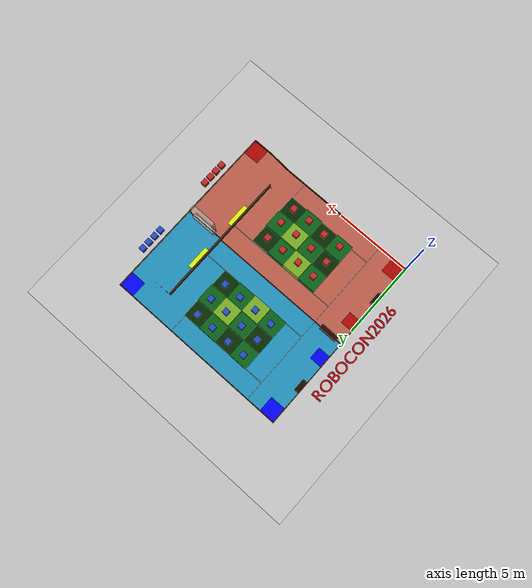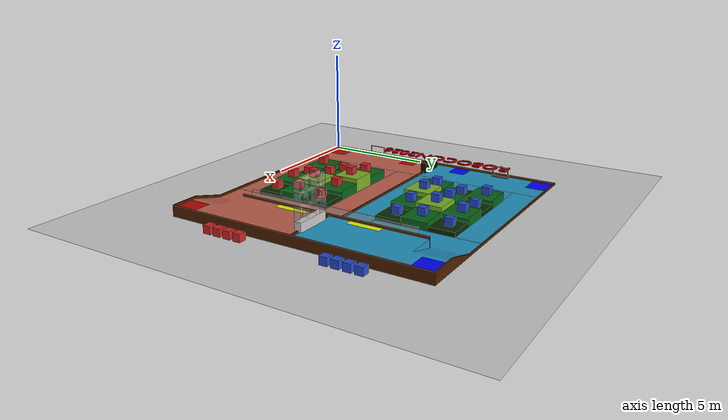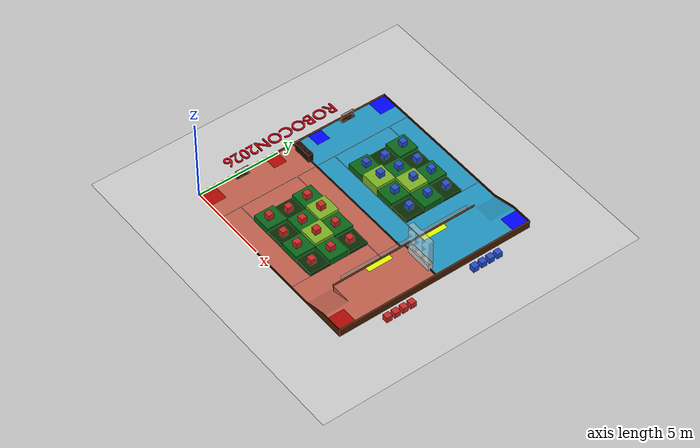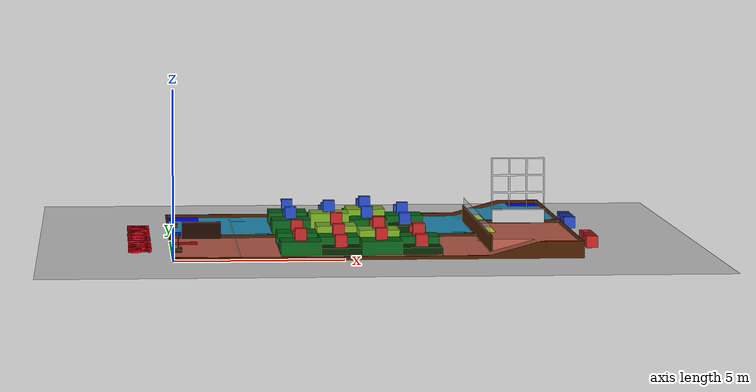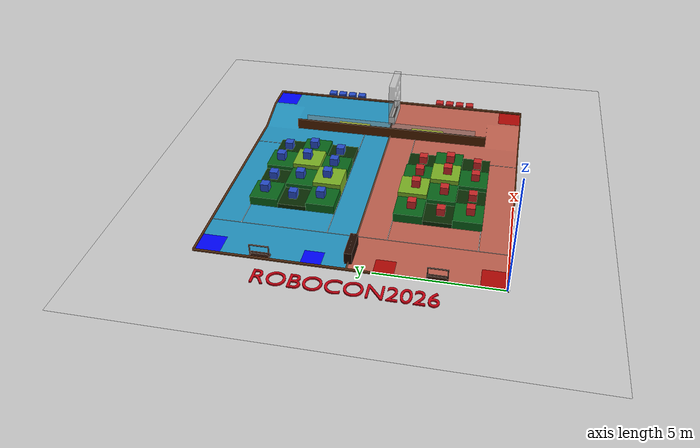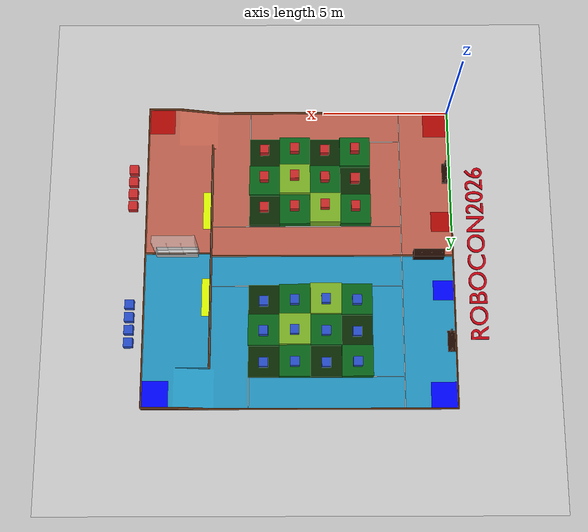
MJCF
<mujoco>
  <default>
    <default class="scene_attribute">
      <default class="scene_visual">
        <geom contype="0" conaffinity="0" group="2"/>
      </default>
      <default class="scene_collision">
        <geom group="3" priority="1" friction="0.6" condim="3" contype="1" conaffinity="0" type="mesh"/>
      </default>
    </default>
    <site size="0.001" group="3"/>
  </default>

  <visual>
    <headlight diffuse="0.6 0.6 0.6" ambient="0.3 0.3 0.3" specular="0 0 0"/>
    <global azimuth="120" elevation="-20"/>
  </visual>

  <worldbody>
    <light pos=" 6 0 10." dir="0 0 -1"/>
    <light pos="-6 0 10." dir="0 0 -1"/>
    <light pos="0  6 10." dir="0 0 -1"/>
    <light pos="0 -6 10." dir="0 0 -1"/>

    <camera name="family_photo" pos="-2.983 5.936 1.710" xyaxes="-0.010 -1.000 -0.000 0.544 -0.005 0.839" fovy="75"/>
    <camera name="top_view" pos="5.600 6.000 20" xyaxes="0 -1 0 1 0 0"/>

    <include file="../../../models/mjcf/kfs.xml"/>

    <body name="scene" childclass="scene_attribute" pos="6.000 6.000 0">
      <body name="scene_visual">
        <geom type="mesh" mesh="robocon2026_0" class="scene_visual" material="robocon2026_mtl_9gg"/>
        <geom type="mesh" mesh="robocon2026_2" class="scene_visual" material="robocon2026_green"/>
        <geom type="mesh" mesh="robocon2026_3" class="scene_visual" material="robocon2026_stair_green"/>
        <geom type="mesh" mesh="robocon2026_4" class="scene_visual" material="robocon2026_yellow"/>
        <geom type="mesh" mesh="robocon2026_8" class="scene_visual" material="robocon2026_mtl_toumingge"/>
        <geom type="mesh" mesh="robocon2026_9" class="scene_visual" material="robocon2026_start_red"/>
        <geom type="mesh" mesh="robocon2026_10" class="scene_visual" material="robocon2026_weapon_grey"/>
        <geom type="mesh" mesh="robocon2026_11" class="scene_visual" material="robocon2026_white_line"/>
        <geom type="mesh" mesh="robocon2026_12" class="scene_visual" material="robocon2026_blue_floor"/>
        <geom type="mesh" mesh="robocon2026_13" class="scene_visual" material="robocon2026_red_floor"/>
        <geom type="mesh" mesh="robocon2026_15" class="scene_visual" material="robocon2026_start_blue"/>
        <geom type="mesh" mesh="robocon2026_16" class="scene_visual" material="robocon2026_wood"/>
        <geom type="mesh" mesh="robocon2026_17" class="scene_visual" material="robocon2026_sidebar"/>
        <geom type="mesh" mesh="robocon2026_18" class="scene_visual" material="robocon2026_mtl_floor"/>
        <geom type="mesh" mesh="robocon2026_19" class="scene_visual" material="robocon2026_mtl_009"/>
      </body>

      <body name="scene_collision">
        <geom name="floor" type="plane" size="10 10 0.01" group="3"/>
        <geom mesh="scene_part_001" class="scene_collision"/>
        <geom mesh="part_002_part_0" class="scene_collision"/>
        <geom mesh="part_002_part_1" class="scene_collision"/>
        <geom mesh="part_002_part_2" class="scene_collision"/>
        <geom mesh="part_002_part_3" class="scene_collision"/>
        <geom mesh="part_002_part_4" class="scene_collision"/>
        <geom mesh="part_002_part_5" class="scene_collision"/>
        <geom mesh="part_002_part_6" class="scene_collision"/>
        <geom mesh="part_002_part_7" class="scene_collision"/>
        <geom mesh="part_002_part_0" class="scene_collision"/>
        <geom mesh="part_002_part_1" class="scene_collision"/>
        <geom mesh="part_002_part_2" class="scene_collision"/>
        <geom mesh="part_002_part_3" class="scene_collision"/>
        <geom mesh="part_002_part_4" class="scene_collision"/>
        <geom mesh="part_002_part_5" class="scene_collision"/>
        <geom mesh="part_002_part_6" class="scene_collision"/>
        <geom mesh="part_002_part_7" class="scene_collision"/>
        <geom mesh="part_005_part_0" class="scene_collision"/>
        <geom mesh="part_005_part_1" class="scene_collision"/>
        <geom mesh="part_005_part_2" class="scene_collision"/>
        <geom mesh="part_005_part_3" class="scene_collision"/>
        <geom mesh="part_005_part_4" class="scene_collision"/>
        <geom mesh="part_005_part_5" class="scene_collision"/>
        <geom mesh="part_005_part_6" class="scene_collision"/>
        <geom mesh="part_010_part_0" class="scene_collision"/>
        <geom mesh="part_010_part_1" class="scene_collision"/>
        <geom mesh="part_010_part_2" class="scene_collision"/>
        <geom mesh="part_010_part_3" class="scene_collision"/>
        <geom mesh="part_010_part_4" class="scene_collision"/>
        <geom mesh="part_010_part_5" class="scene_collision"/>
        <geom mesh="part_010_part_6" class="scene_collision"/>
        <geom mesh="part_010_part_7" class="scene_collision"/>
        <geom mesh="part_010_part_8" class="scene_collision"/>
        <geom mesh="part_010_part_9" class="scene_collision"/>
        <geom mesh="part_010_part_10" class="scene_collision"/>
        <geom mesh="part_010_part_11" class="scene_collision"/>
        <geom mesh="part_010_part_12" class="scene_collision"/>
        <geom mesh="part_010_part_13" class="scene_collision"/>
        <geom mesh="part_010_part_14" class="scene_collision"/>
        <geom mesh="part_010_part_15" class="scene_collision"/>
        <geom mesh="part_010_part_16" class="scene_collision"/>
        <geom mesh="part_010_part_17" class="scene_collision"/>
        <geom mesh="part_010_part_18" class="scene_collision"/>
        <geom mesh="part_010_part_19" class="scene_collision"/>
        <geom mesh="part_010_part_20" class="scene_collision"/>
        <geom mesh="part_010_part_21" class="scene_collision"/>
        <geom mesh="part_010_part_22" class="scene_collision"/>
        <geom mesh="part_010_part_23" class="scene_collision"/>
        <geom mesh="part_011_part_0" class="scene_collision"/>
        <geom mesh="part_011_part_1" class="scene_collision"/>
        <geom mesh="part_011_part_2" class="scene_collision"/>
        <geom mesh="part_011_part_3" class="scene_collision"/>
        <geom mesh="part_011_part_4" class="scene_collision"/>
        <geom mesh="part_011_part_5" class="scene_collision"/>
        <geom mesh="part_011_part_6" class="scene_collision"/>
        <geom mesh="part_011_part_7" class="scene_collision"/>
        <geom mesh="part_011_part_8" class="scene_collision"/>
        <geom mesh="part_011_part_9" class="scene_collision"/>
        <geom mesh="part_011_part_10" class="scene_collision"/>
        <geom mesh="part_011_part_11" class="scene_collision"/>
        <geom mesh="part_011_part_12" class="scene_collision"/>
        <geom mesh="part_011_part_13" class="scene_collision"/>
        <geom mesh="part_011_part_14" class="scene_collision"/>
        <geom mesh="part_011_part_15" class="scene_collision"/>
        <geom mesh="part_011_part_16" class="scene_collision"/>
        <geom mesh="part_011_part_17" class="scene_collision"/>
        <geom mesh="part_011_part_18" class="scene_collision"/>
        <geom mesh="part_011_part_19" class="scene_collision"/>
        <geom mesh="part_011_part_20" class="scene_collision"/>
        <geom mesh="part_011_part_21" class="scene_collision"/>
        <geom mesh="part_011_part_22" class="scene_collision"/>
        <geom mesh="part_011_part_23" class="scene_collision"/>
        <geom mesh="part_011_part_24" class="scene_collision"/>
        <geom mesh="part_011_part_25" class="scene_collision"/>
        <geom mesh="scene_part_020" class="scene_collision"/>
        <geom mesh="scene_part_021" class="scene_collision"/>
        <geom mesh="scene_part_022" class="scene_collision"/>
        <geom mesh="scene_part_023" class="scene_collision"/>
        <geom mesh="scene_part_024" class="scene_collision"/>
        <geom mesh="scene_part_025" class="scene_collision"/>
        <geom mesh="scene_part_026" class="scene_collision"/>
        <geom mesh="scene_part_027" class="scene_collision"/>
        <geom mesh="scene_part_028" class="scene_collision"/>
        <geom mesh="scene_part_029" class="scene_collision"/>
        <geom mesh="scene_part_030" class="scene_collision"/>
        <geom mesh="scene_part_031" class="scene_collision"/>
        <geom mesh="scene_part_032" class="scene_collision"/>
        <geom mesh="scene_part_033" class="scene_collision"/>
        <geom mesh="scene_part_034" class="scene_collision"/>
        <geom mesh="scene_part_035" class="scene_collision"/>
        <geom mesh="scene_part_036" class="scene_collision"/>
        <geom mesh="scene_part_037" class="scene_collision"/>
        <geom mesh="scene_part_038" class="scene_collision"/>
        <geom mesh="scene_part_039" class="scene_collision"/>
        <geom mesh="scene_part_040" class="scene_collision"/>
        <geom mesh="scene_part_041" class="scene_collision"/>
        <geom mesh="scene_part_042" class="scene_collision"/>
        <geom mesh="scene_part_043" class="scene_collision"/>
        <geom mesh="part_044_part_0" class="scene_collision"/>
        <geom mesh="part_044_part_1" class="scene_collision"/>
        <geom mesh="part_044_part_2" class="scene_collision"/>
        <geom mesh="scene_part_045" class="scene_collision"/>
        <geom mesh="scene_part_046" class="scene_collision"/>
        <geom mesh="scene_part_047" class="scene_collision"/>
        <geom mesh="part_048_part_0" class="scene_collision"/>
        <geom mesh="part_048_part_1" class="scene_collision"/>
        <geom mesh="part_049_part_0" class="scene_collision"/>
        <geom mesh="part_049_part_1" class="scene_collision"/>
        <geom mesh="part_049_part_2" class="scene_collision"/>
        <geom mesh="scene_part_054" class="scene_collision"/>
        <geom mesh="scene_part_055" class="scene_collision"/>
        <geom mesh="parts_056_part_0" class="scene_collision"/>
        <geom mesh="parts_056_part_1" class="scene_collision"/>
        <geom mesh="parts_056_part_2" class="scene_collision"/>
        <geom mesh="parts_056_part_3" class="scene_collision"/>
        <geom mesh="parts_056_part_4" class="scene_collision"/>
        <geom mesh="parts_056_part_5" class="scene_collision"/>
        <geom mesh="parts_056_part_6" class="scene_collision"/>
        <geom mesh="parts_056_part_7" class="scene_collision"/>
        <geom mesh="parts_056_part_8" class="scene_collision"/>
        <geom mesh="parts_056_part_9" class="scene_collision"/>
        <geom mesh="parts_056_part_10" class="scene_collision"/>
        <geom mesh="parts_056_part_11" class="scene_collision"/>
        <geom mesh="parts_056_part_12" class="scene_collision"/>
        <geom mesh="parts_056_part_13" class="scene_collision"/>
        <geom mesh="parts_056_part_14" class="scene_collision"/>
        <geom mesh="parts_056_part_15" class="scene_collision"/>
        <geom mesh="parts_056_part_16" class="scene_collision"/>
        <geom mesh="parts_056_part_17" class="scene_collision"/>
        <geom mesh="parts_056_part_18" class="scene_collision"/>
        <geom mesh="parts_056_part_19" class="scene_collision"/>
        <geom mesh="parts_056_part_20" class="scene_collision"/>
        <geom mesh="parts_056_part_21" class="scene_collision"/>
        <geom mesh="parts_056_part_22" class="scene_collision"/>
        <geom mesh="parts_056_part_23" class="scene_collision"/>
        <geom mesh="parts_056_part_24" class="scene_collision"/>
        <geom mesh="parts_056_part_25" class="scene_collision"/>
        <geom mesh="parts_056_part_26" class="scene_collision"/>
        <geom mesh="parts_056_part_27" class="scene_collision"/>
        <geom mesh="parts_056_part_28" class="scene_collision"/>
        <geom mesh="parts_056_part_29" class="scene_collision"/>
        <geom mesh="parts_056_part_30" class="scene_collision"/>
        <geom mesh="parts_056_part_31" class="scene_collision"/>
        <geom mesh="parts_056_part_32" class="scene_collision"/>
        <geom mesh="parts_056_part_33" class="scene_collision"/>
        <geom mesh="parts_056_part_34" class="scene_collision"/>
        <geom mesh="parts_056_part_35" class="scene_collision"/>
        <geom mesh="parts_056_part_36" class="scene_collision"/>
        <geom mesh="parts_056_part_37" class="scene_collision"/>
        <geom mesh="parts_056_part_38" class="scene_collision"/>
        <geom mesh="parts_056_part_39" class="scene_collision"/>
        <geom mesh="parts_056_part_40" class="scene_collision"/>
        <geom mesh="parts_056_part_41" class="scene_collision"/>
        <geom mesh="parts_056_part_42" class="scene_collision"/>
        <geom mesh="parts_056_part_43" class="scene_collision"/>
        <geom mesh="parts_056_part_44" class="scene_collision"/>
        <geom mesh="parts_056_part_45" class="scene_collision"/>
        <geom mesh="parts_056_part_46" class="scene_collision"/>
        <geom mesh="parts_056_part_47" class="scene_collision"/>
        <geom mesh="parts_056_part_48" class="scene_collision"/>
        <geom mesh="parts_056_part_49" class="scene_collision"/>
      </body>
    </body>
  </worldbody>

  <asset>
    <texture type="skybox" builtin="gradient" rgb1="0.3 0.5 0.7" rgb2="0 0 0" width="512" height="3072"/>
    <texture type="2d" name="groundplane" builtin="checker" mark="edge" rgb1="0.2 0.3 0.4" rgb2="0.1 0.2 0.3" markrgb="0.8 0.8 0.8" width="300" height="300"/>
    <material name="groundplane" texture="groundplane" texuniform="true" texrepeat="5 5" reflectance="0.2"/>
    <material name="robocon2026_blue_floor" rgba="0.136916 0.585362 0.758766 1" specular="0.5" shininess="0.25"/>
    <material name="robocon2026_red_floor" rgba="0.756301 0.380415 0.306646 1" specular="0.5" shininess="0.25"/>
    <material name="robocon2026_green" rgba="0.031974 0.394366 0.096107 1" specular="0.5" shininess="0.25"/>
    <material name="robocon2026_mtl_009" rgba="0.800000 0.012186 0.070887 1" specular="0.5" shininess="0.25"/>
    <material name="robocon2026_mtl_9gg" rgba="0.800000 0.800000 0.800000 1" specular="0.5" shininess="0.25"/>
    <material name="robocon2026_mtl_floor" rgba="0.800000 0.800000 0.800000 1" specular="0.5" shininess="0.25"/>
    <material name="robocon2026_mtl_toumingge" rgba="0.800000 0.800000 0.800000 0.5" specular="0.5" shininess="0.81"/>
    <material name="robocon2026_sidebar" rgba="0.306829 0.122046 0.000000 1" specular="0.5" shininess="0.25"/>
    <material name="robocon2026_stair_green" rgba="0.034321 0.168246 0.010604 1" specular="0.5" shininess="0.25"/>
    <material name="robocon2026_start_blue" rgba="0.000000 0.013418 1 1" specular="0.5" shininess="0.25"/>
    <material name="robocon2026_start_red" rgba="0.699030 0.029578 0.014299 1" specular="0.5" shininess="0.25"/>
    <material name="robocon2026_weapon_grey" rgba="0.883790 1 0.001295 1" specular="0.5" shininess="0.25"/>
    <material name="robocon2026_white_line" rgba="0.800000 0.800000 0.800000 1" specular="0.5" shininess="0.25"/>
    <material name="robocon2026_wood" rgba="0.117286 0.033454 0.000000 1" specular="0.5" shininess="0.250816116"/>
    <material name="robocon2026_yellow" rgba="0.485941 0.697386 0.142600 1" specular="0.5" shininess="0.25"/>
    <mesh name="robocon2026_0" file="../../../models/meshes/visual/robocon2026_0.obj"/>
    <mesh name="robocon2026_2" file="../../../models/meshes/visual/robocon2026_2.obj"/>
    <mesh name="robocon2026_3" file="../../../models/meshes/visual/robocon2026_3.obj"/>
    <mesh name="robocon2026_4" file="../../../models/meshes/visual/robocon2026_4.obj"/>
    <mesh name="robocon2026_8" file="../../../models/meshes/visual/robocon2026_8.obj"/>
    <mesh name="robocon2026_9" file="../../../models/meshes/visual/robocon2026_9.obj"/>
    <mesh name="robocon2026_10" file="../../../models/meshes/visual/robocon2026_10.obj" inertia="shell"/>
    <mesh name="robocon2026_11" file="../../../models/meshes/visual/robocon2026_11.obj" inertia="shell"/>
    <mesh name="robocon2026_12" file="../../../models/meshes/visual/robocon2026_12.obj" inertia="shell"/>
    <mesh name="robocon2026_13" file="../../../models/meshes/visual/robocon2026_13.obj" inertia="shell"/>
    <mesh name="robocon2026_15" file="../../../models/meshes/visual/robocon2026_15.obj"/>
    <mesh name="robocon2026_16" file="../../../models/meshes/visual/robocon2026_16.obj"/>
    <mesh name="robocon2026_17" file="../../../models/meshes/visual/robocon2026_17.obj"/>
    <mesh name="robocon2026_18" file="../../../models/meshes/visual/robocon2026_18.obj" inertia="shell"/>
    <mesh name="robocon2026_19" file="../../../models/meshes/visual/robocon2026_19.obj"/>

    <mesh name="scene_part_001" file="../../../models/meshes/parts/part_001.obj"/>
    <mesh name="part_002_part_0" file="../../../models/meshes/parts/part_002/part_0.obj"/>
    <mesh name="part_002_part_1" file="../../../models/meshes/parts/part_002/part_1.obj"/>
    <mesh name="part_002_part_2" file="../../../models/meshes/parts/part_002/part_2.obj"/>
    <mesh name="part_002_part_3" file="../../../models/meshes/parts/part_002/part_3.obj"/>
    <mesh name="part_002_part_4" file="../../../models/meshes/parts/part_002/part_4.obj"/>
    <mesh name="part_002_part_5" file="../../../models/meshes/parts/part_002/part_5.obj"/>
    <mesh name="part_002_part_6" file="../../../models/meshes/parts/part_002/part_6.obj"/>
    <mesh name="part_002_part_7" file="../../../models/meshes/parts/part_002/part_7.obj"/>
    <mesh name="part_005_part_0" file="../../../models/meshes/parts/part_005/part_0.obj"/>
    <mesh name="part_005_part_1" file="../../../models/meshes/parts/part_005/part_1.obj"/>
    <mesh name="part_005_part_2" file="../../../models/meshes/parts/part_005/part_2.obj"/>
    <mesh name="part_005_part_3" file="../../../models/meshes/parts/part_005/part_3.obj"/>
    <mesh name="part_005_part_4" file="../../../models/meshes/parts/part_005/part_4.obj"/>
    <mesh name="part_005_part_5" file="../../../models/meshes/parts/part_005/part_5.obj"/>
    <mesh name="part_005_part_6" file="../../../models/meshes/parts/part_005/part_6.obj"/>
    <mesh name="part_010_part_0" file="../../../models/meshes/parts/part_010/part_0.obj"/>
    <mesh name="part_010_part_1" file="../../../models/meshes/parts/part_010/part_1.obj"/>
    <mesh name="part_010_part_2" file="../../../models/meshes/parts/part_010/part_2.obj"/>
    <mesh name="part_010_part_3" file="../../../models/meshes/parts/part_010/part_3.obj"/>
    <mesh name="part_010_part_4" file="../../../models/meshes/parts/part_010/part_4.obj"/>
    <mesh name="part_010_part_5" file="../../../models/meshes/parts/part_010/part_5.obj"/>
    <mesh name="part_010_part_6" file="../../../models/meshes/parts/part_010/part_6.obj"/>
    <mesh name="part_010_part_7" file="../../../models/meshes/parts/part_010/part_7.obj"/>
    <mesh name="part_010_part_8" file="../../../models/meshes/parts/part_010/part_8.obj"/>
    <mesh name="part_010_part_9" file="../../../models/meshes/parts/part_010/part_9.obj"/>
    <mesh name="part_010_part_10" file="../../../models/meshes/parts/part_010/part_10.obj"/>
    <mesh name="part_010_part_11" file="../../../models/meshes/parts/part_010/part_11.obj"/>
    <mesh name="part_010_part_12" file="../../../models/meshes/parts/part_010/part_12.obj"/>
    <mesh name="part_010_part_13" file="../../../models/meshes/parts/part_010/part_13.obj"/>
    <mesh name="part_010_part_14" file="../../../models/meshes/parts/part_010/part_14.obj"/>
    <mesh name="part_010_part_15" file="../../../models/meshes/parts/part_010/part_15.obj"/>
    <mesh name="part_010_part_16" file="../../../models/meshes/parts/part_010/part_16.obj"/>
    <mesh name="part_010_part_17" file="../../../models/meshes/parts/part_010/part_17.obj"/>
    <mesh name="part_010_part_18" file="../../../models/meshes/parts/part_010/part_18.obj"/>
    <mesh name="part_010_part_19" file="../../../models/meshes/parts/part_010/part_19.obj"/>
    <mesh name="part_010_part_20" file="../../../models/meshes/parts/part_010/part_20.obj"/>
    <mesh name="part_010_part_21" file="../../../models/meshes/parts/part_010/part_21.obj"/>
    <mesh name="part_010_part_22" file="../../../models/meshes/parts/part_010/part_22.obj"/>
    <mesh name="part_010_part_23" file="../../../models/meshes/parts/part_010/part_23.obj"/>
    <mesh name="part_011_part_0" file="../../../models/meshes/parts/part_011/part_0.obj"/>
    <mesh name="part_011_part_1" file="../../../models/meshes/parts/part_011/part_1.obj"/>
    <mesh name="part_011_part_2" file="../../../models/meshes/parts/part_011/part_2.obj"/>
    <mesh name="part_011_part_3" file="../../../models/meshes/parts/part_011/part_3.obj"/>
    <mesh name="part_011_part_4" file="../../../models/meshes/parts/part_011/part_4.obj"/>
    <mesh name="part_011_part_5" file="../../../models/meshes/parts/part_011/part_5.obj"/>
    <mesh name="part_011_part_6" file="../../../models/meshes/parts/part_011/part_6.obj"/>
    <mesh name="part_011_part_7" file="../../../models/meshes/parts/part_011/part_7.obj"/>
    <mesh name="part_011_part_8" file="../../../models/meshes/parts/part_011/part_8.obj"/>
    <mesh name="part_011_part_9" file="../../../models/meshes/parts/part_011/part_9.obj"/>
    <mesh name="part_011_part_10" file="../../../models/meshes/parts/part_011/part_10.obj"/>
    <mesh name="part_011_part_11" file="../../../models/meshes/parts/part_011/part_11.obj"/>
    <mesh name="part_011_part_12" file="../../../models/meshes/parts/part_011/part_12.obj"/>
    <mesh name="part_011_part_13" file="../../../models/meshes/parts/part_011/part_13.obj"/>
    <mesh name="part_011_part_14" file="../../../models/meshes/parts/part_011/part_14.obj"/>
    <mesh name="part_011_part_15" file="../../../models/meshes/parts/part_011/part_15.obj"/>
    <mesh name="part_011_part_16" file="../../../models/meshes/parts/part_011/part_16.obj"/>
    <mesh name="part_011_part_17" file="../../../models/meshes/parts/part_011/part_17.obj"/>
    <mesh name="part_011_part_18" file="../../../models/meshes/parts/part_011/part_18.obj"/>
    <mesh name="part_011_part_19" file="../../../models/meshes/parts/part_011/part_19.obj"/>
    <mesh name="part_011_part_20" file="../../../models/meshes/parts/part_011/part_20.obj"/>
    <mesh name="part_011_part_21" file="../../../models/meshes/parts/part_011/part_21.obj"/>
    <mesh name="part_011_part_22" file="../../../models/meshes/parts/part_011/part_22.obj"/>
    <mesh name="part_011_part_23" file="../../../models/meshes/parts/part_011/part_23.obj"/>
    <mesh name="part_011_part_24" file="../../../models/meshes/parts/part_011/part_24.obj"/>
    <mesh name="part_011_part_25" file="../../../models/meshes/parts/part_011/part_25.obj"/>
    <mesh name="scene_part_020" file="../../../models/meshes/parts/part_020.obj"/>
    <mesh name="scene_part_021" file="../../../models/meshes/parts/part_021.obj"/>
    <mesh name="scene_part_022" file="../../../models/meshes/parts/part_022.obj"/>
    <mesh name="scene_part_023" file="../../../models/meshes/parts/part_023.obj"/>
    <mesh name="scene_part_024" file="../../../models/meshes/parts/part_024.obj"/>
    <mesh name="scene_part_025" file="../../../models/meshes/parts/part_025.obj"/>
    <mesh name="scene_part_026" file="../../../models/meshes/parts/part_026.obj"/>
    <mesh name="scene_part_027" file="../../../models/meshes/parts/part_027.obj"/>
    <mesh name="scene_part_028" file="../../../models/meshes/parts/part_028.obj"/>
    <mesh name="scene_part_029" file="../../../models/meshes/parts/part_029.obj"/>
    <mesh name="scene_part_030" file="../../../models/meshes/parts/part_030.obj"/>
    <mesh name="scene_part_031" file="../../../models/meshes/parts/part_031.obj"/>
    <mesh name="scene_part_032" file="../../../models/meshes/parts/part_032.obj"/>
    <mesh name="scene_part_033" file="../../../models/meshes/parts/part_033.obj"/>
    <mesh name="scene_part_034" file="../../../models/meshes/parts/part_034.obj"/>
    <mesh name="scene_part_035" file="../../../models/meshes/parts/part_035.obj"/>
    <mesh name="scene_part_036" file="../../../models/meshes/parts/part_036.obj"/>
    <mesh name="scene_part_037" file="../../../models/meshes/parts/part_037.obj"/>
    <mesh name="scene_part_038" file="../../../models/meshes/parts/part_038.obj"/>
    <mesh name="scene_part_039" file="../../../models/meshes/parts/part_039.obj"/>
    <mesh name="scene_part_040" file="../../../models/meshes/parts/part_040.obj"/>
    <mesh name="scene_part_041" file="../../../models/meshes/parts/part_041.obj"/>
    <mesh name="scene_part_042" file="../../../models/meshes/parts/part_042.obj"/>
    <mesh name="scene_part_043" file="../../../models/meshes/parts/part_043.obj"/>
    <mesh name="part_044_part_0" file="../../../models/meshes/parts/part_044/part_0.obj"/>
    <mesh name="part_044_part_1" file="../../../models/meshes/parts/part_044/part_1.obj"/>
    <mesh name="part_044_part_2" file="../../../models/meshes/parts/part_044/part_2.obj"/>
    <mesh name="scene_part_045" file="../../../models/meshes/parts/part_045.obj"/>
    <mesh name="scene_part_046" file="../../../models/meshes/parts/part_046.obj"/>
    <mesh name="scene_part_047" file="../../../models/meshes/parts/part_047.obj"/>
    <mesh name="part_048_part_0" file="../../../models/meshes/parts/part_048/part_0.obj"/>
    <mesh name="part_048_part_1" file="../../../models/meshes/parts/part_048/part_1.obj"/>
    <mesh name="part_049_part_0" file="../../../models/meshes/parts/part_049/part_0.obj"/>
    <mesh name="part_049_part_1" file="../../../models/meshes/parts/part_049/part_1.obj"/>
    <mesh name="part_049_part_2" file="../../../models/meshes/parts/part_049/part_2.obj"/>
    <mesh name="scene_part_054" file="../../../models/meshes/parts/part_054.obj"/>
    <mesh name="scene_part_055" file="../../../models/meshes/parts/part_055.obj"/>
    <mesh name="parts_056_part_0" file="../../../models/meshes/parts/parts_056/part_0.obj"/>
    <mesh name="parts_056_part_1" file="../../../models/meshes/parts/parts_056/part_1.obj"/>
    <mesh name="parts_056_part_2" file="../../../models/meshes/parts/parts_056/part_2.obj"/>
    <mesh name="parts_056_part_3" file="../../../models/meshes/parts/parts_056/part_3.obj"/>
    <mesh name="parts_056_part_4" file="../../../models/meshes/parts/parts_056/part_4.obj"/>
    <mesh name="parts_056_part_5" file="../../../models/meshes/parts/parts_056/part_5.obj"/>
    <mesh name="parts_056_part_6" file="../../../models/meshes/parts/parts_056/part_6.obj"/>
    <mesh name="parts_056_part_7" file="../../../models/meshes/parts/parts_056/part_7.obj"/>
    <mesh name="parts_056_part_8" file="../../../models/meshes/parts/parts_056/part_8.obj"/>
    <mesh name="parts_056_part_9" file="../../../models/meshes/parts/parts_056/part_9.obj"/>
    <mesh name="parts_056_part_10" file="../../../models/meshes/parts/parts_056/part_10.obj"/>
    <mesh name="parts_056_part_11" file="../../../models/meshes/parts/parts_056/part_11.obj"/>
    <mesh name="parts_056_part_12" file="../../../models/meshes/parts/parts_056/part_12.obj"/>
    <mesh name="parts_056_part_13" file="../../../models/meshes/parts/parts_056/part_13.obj"/>
    <mesh name="parts_056_part_14" file="../../../models/meshes/parts/parts_056/part_14.obj"/>
    <mesh name="parts_056_part_15" file="../../../models/meshes/parts/parts_056/part_15.obj"/>
    <mesh name="parts_056_part_16" file="../../../models/meshes/parts/parts_056/part_16.obj"/>
    <mesh name="parts_056_part_17" file="../../../models/meshes/parts/parts_056/part_17.obj"/>
    <mesh name="parts_056_part_18" file="../../../models/meshes/parts/parts_056/part_18.obj"/>
    <mesh name="parts_056_part_19" file="../../../models/meshes/parts/parts_056/part_19.obj"/>
    <mesh name="parts_056_part_20" file="../../../models/meshes/parts/parts_056/part_20.obj"/>
    <mesh name="parts_056_part_21" file="../../../models/meshes/parts/parts_056/part_21.obj"/>
    <mesh name="parts_056_part_22" file="../../../models/meshes/parts/parts_056/part_22.obj"/>
    <mesh name="parts_056_part_23" file="../../../models/meshes/parts/parts_056/part_23.obj"/>
    <mesh name="parts_056_part_24" file="../../../models/meshes/parts/parts_056/part_24.obj"/>
    <mesh name="parts_056_part_25" file="../../../models/meshes/parts/parts_056/part_25.obj"/>
    <mesh name="parts_056_part_26" file="../../../models/meshes/parts/parts_056/part_26.obj"/>
    <mesh name="parts_056_part_27" file="../../../models/meshes/parts/parts_056/part_27.obj"/>
    <mesh name="parts_056_part_28" file="../../../models/meshes/parts/parts_056/part_28.obj"/>
    <mesh name="parts_056_part_29" file="../../../models/meshes/parts/parts_056/part_29.obj"/>
    <mesh name="parts_056_part_30" file="../../../models/meshes/parts/parts_056/part_30.obj"/>
    <mesh name="parts_056_part_31" file="../../../models/meshes/parts/parts_056/part_31.obj"/>
    <mesh name="parts_056_part_32" file="../../../models/meshes/parts/parts_056/part_32.obj"/>
    <mesh name="parts_056_part_33" file="../../../models/meshes/parts/parts_056/part_33.obj"/>
    <mesh name="parts_056_part_34" file="../../../models/meshes/parts/parts_056/part_34.obj"/>
    <mesh name="parts_056_part_35" file="../../../models/meshes/parts/parts_056/part_35.obj"/>
    <mesh name="parts_056_part_36" file="../../../models/meshes/parts/parts_056/part_36.obj"/>
    <mesh name="parts_056_part_37" file="../../../models/meshes/parts/parts_056/part_37.obj"/>
    <mesh name="parts_056_part_38" file="../../../models/meshes/parts/parts_056/part_38.obj"/>
    <mesh name="parts_056_part_39" file="../../../models/meshes/parts/parts_056/part_39.obj"/>
    <mesh name="parts_056_part_40" file="../../../models/meshes/parts/parts_056/part_40.obj"/>
    <mesh name="parts_056_part_41" file="../../../models/meshes/parts/parts_056/part_41.obj"/>
    <mesh name="parts_056_part_42" file="../../../models/meshes/parts/parts_056/part_42.obj"/>
    <mesh name="parts_056_part_43" file="../../../models/meshes/parts/parts_056/part_43.obj"/>
    <mesh name="parts_056_part_44" file="../../../models/meshes/parts/parts_056/part_44.obj"/>
    <mesh name="parts_056_part_45" file="../../../models/meshes/parts/parts_056/part_45.obj"/>
    <mesh name="parts_056_part_46" file="../../../models/meshes/parts/parts_056/part_46.obj"/>
    <mesh name="parts_056_part_47" file="../../../models/meshes/parts/parts_056/part_47.obj"/>
    <mesh name="parts_056_part_48" file="../../../models/meshes/parts/parts_056/part_48.obj"/>
    <mesh name="parts_056_part_49" file="../../../models/meshes/parts/parts_056/part_49.obj"/>
  </asset>

  <include file="kfs_dep_bridge.xml"/>

</mujoco>

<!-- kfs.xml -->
<mujocoinclude>

    <body name="kfs_red_R1_00" pos="7.400 4.100 0.38">
      <joint type="free" damping="1e-4"/>
      <inertial pos="0 0 0" mass="0.01" diaginertia="0.002 0.002 0.002"/>
      <geom group="1" class="scene_collision" conaffinity="1" mesh="kfs_01" material="kfs_R1_KFS_red" />
    </body>
    <body name="kfs_red_01" pos="5.000 4.100 0.78">
      <joint type="free" damping="1e-4"/>
      <inertial pos="0 0 0" mass="0.01" diaginertia="0.002 0.002 0.002"/>
      <geom group="1" class="scene_collision" conaffinity="1" mesh="kfs_03" material="kfs_redR015" />
    </body>
    <body name="kfs_red_02" pos="3.800 4.100 0.58">
      <joint type="free" damping="1e-4"/>
      <inertial pos="0 0 0" mass="0.01" diaginertia="0.002 0.002 0.002"/>
      <geom group="1" class="scene_collision" conaffinity="1" mesh="kfs_04" material="kfs_redR014" />
    </body>
    <body name="kfs_red_03" pos="6.200 2.900 0.78">
      <joint type="free" damping="1e-4"/>
      <inertial pos="0 0 0" mass="0.01" diaginertia="0.002 0.002 0.002"/>
      <geom group="1" class="scene_collision" conaffinity="1" mesh="kfs_05" material="kfs_redR013" />
    </body>
    <body name="kfs_red_04" pos="7.400 2.900 0.58">
      <joint type="free" damping="1e-4"/>
      <inertial pos="0 0 0" mass="0.01" diaginertia="0.002 0.002 0.002"/>
      <geom group="1" class="scene_collision" conaffinity="1" mesh="kfs_06" material="kfs_redR012" />
    </body>
    <body name="kfs_red_05" pos="5.000 2.900 0.58">
      <joint type="free" damping="1e-4"/>
      <inertial pos="0 0 0" mass="0.01" diaginertia="0.002 0.002 0.002"/>
      <geom group="1" class="scene_collision" conaffinity="1" mesh="kfs_07" material="kfs_redR011" />
    </body>
    <body name="kfs_red_06" pos="3.800 2.900 0.38">
      <joint type="free" damping="1e-4"/>
      <inertial pos="0 0 0" mass="0.01" diaginertia="0.002 0.002 0.002"/>
      <geom group="1" class="scene_collision" conaffinity="1" mesh="kfs_08" material="kfs_redR010" />
    </body>
    <body name="kfs_red_07" pos="7.400 1.700 0.38">
      <joint type="free" damping="1e-4"/>
      <inertial pos="0 0 0" mass="0.01" diaginertia="0.002 0.002 0.002"/>
      <geom group="1" class="scene_collision" conaffinity="1" mesh="kfs_09" material="kfs_redR009" />
    </body>
    <body name="kfs_red_08" pos="6.200 4.100 0.58">
      <joint type="free" damping="1e-4"/>
      <inertial pos="0 0 0" mass="0.01" diaginertia="0.002 0.002 0.002"/>
      <geom group="1" class="scene_collision" conaffinity="1" mesh="kfs_10" material="kfs_redR008" />
    </body>
    <body name="kfs_red_09" pos="6.200 1.700 0.58">
      <joint type="free" damping="1e-4"/>
      <inertial pos="0 0 0" mass="0.01" diaginertia="0.002 0.002 0.002"/>
      <geom group="1" class="scene_collision" conaffinity="1" mesh="kfs_11" material="kfs_redR007" />
    </body>
    <body name="kfs_red_10" pos="5.000 1.700 0.38">
      <joint type="free" damping="1e-4"/>
      <inertial pos="0 0 0" mass="0.01" diaginertia="0.002 0.002 0.002"/>
      <geom group="1" class="scene_collision" conaffinity="1" mesh="kfs_12" material="kfs_redR006" />
    </body>
    <body name="kfs_red_11" pos="3.800 1.700 0.58">
      <joint type="free" damping="1e-4"/>
      <inertial pos="0 0 0" mass="0.01" diaginertia="0.002 0.002 0.002"/>
      <geom group="1" class="scene_collision" conaffinity="1" mesh="kfs_13" material="kfs_redR005" />
    </body>
    <body name="kfs_red_12" pos="12.600 4.000 0.2">
      <joint type="free" damping="1e-4"/>
      <inertial pos="0 0 0" mass="0.01" diaginertia="0.002 0.002 0.002"/>
      <geom group="1" class="scene_collision" conaffinity="1" mesh="kfs_14" material="kfs_redR004" />
    </body>
    <body name="kfs_red_13" pos="12.600 3.500 0.2">
      <joint type="free" damping="1e-4"/>
      <inertial pos="0 0 0" mass="0.01" diaginertia="0.002 0.002 0.002"/>
      <geom group="1" class="scene_collision" conaffinity="1" mesh="kfs_15" material="kfs_redR003" />
    </body>
    <body name="kfs_red_14" pos="12.600 3.000 0.2">
      <joint type="free" damping="1e-4"/>
      <inertial pos="0 0 0" mass="0.01" diaginertia="0.002 0.002 0.002"/>
      <geom group="1" class="scene_collision" conaffinity="1" mesh="kfs_16" material="kfs_redR002" />
    </body>
    <body name="kfs_red_15" pos="12.600 2.500 0.2">
      <joint type="free" damping="1e-4"/>
      <inertial pos="0 0 0" mass="0.01" diaginertia="0.002 0.002 0.002"/>
      <geom group="1" class="scene_collision" conaffinity="1" mesh="kfs_17" material="kfs_redR001" />
    </body>
    <body name="kfs_blue_R1_00" pos="7.400 7.900 0.38">
      <joint type="free" damping="1e-4"/>
      <inertial pos="0 0 0" mass="0.01" diaginertia="0.002 0.002 0.002"/>
      <geom group="1" class="scene_collision" conaffinity="1" mesh="kfs_00" material="kfs_R1_KFS_blue" />
    </body>
    <body name="kfs_blue_01" pos="6.200 7.900 0.58">
      <joint type="free" damping="1e-4"/>
      <inertial pos="0 0 0" mass="0.01" diaginertia="0.002 0.002 0.002"/>
      <geom group="1" class="scene_collision" conaffinity="1" mesh="kfs_18" material="kfs_blueR015" />
    </body>
    <body name="kfs_blue_02" pos="5.000 7.900 0.78">
      <joint type="free" damping="1e-4"/>
      <inertial pos="0 0 0" mass="0.01" diaginertia="0.002 0.002 0.002"/>
      <geom group="1" class="scene_collision" conaffinity="1" mesh="kfs_19" material="kfs_blueR014" />
    </body>
    <body name="kfs_blue_03" pos="3.800 7.900 0.58">
      <joint type="free" damping="1e-4"/>
      <inertial pos="0 0 0" mass="0.01" diaginertia="0.002 0.002 0.002"/>
      <geom group="1" class="scene_collision" conaffinity="1" mesh="kfs_20" material="kfs_blueR013" />
    </body>
    <body name="kfs_blue_04" pos="6.200 9.100 0.78">
      <joint type="free" damping="1e-4"/>
      <inertial pos="0 0 0" mass="0.01" diaginertia="0.002 0.002 0.002"/>
      <geom group="1" class="scene_collision" conaffinity="1" mesh="kfs_21" material="kfs_blueR012" />
    </body>
    <body name="kfs_blue_05" pos="7.400 9.100 0.58">
      <joint type="free" damping="1e-4"/>
      <inertial pos="0 0 0" mass="0.01" diaginertia="0.002 0.002 0.002"/>
      <geom group="1" class="scene_collision" conaffinity="1" mesh="kfs_22" material="kfs_blueR011" />
    </body>
    <body name="kfs_blue_06" pos="5.000 9.100 0.58">
      <joint type="free" damping="1e-4"/>
      <inertial pos="0 0 0" mass="0.01" diaginertia="0.002 0.002 0.002"/>
      <geom group="1" class="scene_collision" conaffinity="1" mesh="kfs_23" material="kfs_blueR010" />
    </body>
    <body name="kfs_blue_07" pos="3.800 9.100 0.38">
      <joint type="free" damping="1e-4"/>
      <inertial pos="0 0 0" mass="0.01" diaginertia="0.002 0.002 0.002"/>
      <geom group="1" class="scene_collision" conaffinity="1" mesh="kfs_24" material="kfs_blueR009" />
    </body>
    <body name="kfs_blue_08" pos="7.400 10.300 0.38">
      <joint type="free" damping="1e-4"/>
      <inertial pos="0 0 0" mass="0.01" diaginertia="0.002 0.002 0.002"/>
      <geom group="1" class="scene_collision" conaffinity="1" mesh="kfs_25" material="kfs_blueR008" />
    </body>
    <body name="kfs_blue_09" pos="6.200 10.300 0.58">
      <joint type="free" damping="1e-4"/>
      <inertial pos="0 0 0" mass="0.01" diaginertia="0.002 0.002 0.002"/>
      <geom group="1" class="scene_collision" conaffinity="1" mesh="kfs_26" material="kfs_blueR007" />
    </body>
    <body name="kfs_blue_10" pos="5.000 10.300 0.38">
      <joint type="free" damping="1e-4"/>
      <inertial pos="0 0 0" mass="0.01" diaginertia="0.002 0.002 0.002"/>
      <geom group="1" class="scene_collision" conaffinity="1" mesh="kfs_27" material="kfs_blueR006" />
    </body>
    <body name="kfs_blue_11" pos="3.800 10.300 0.58">
      <joint type="free" damping="1e-4"/>
      <inertial pos="0 0 0" mass="0.01" diaginertia="0.002 0.002 0.002"/>
      <geom group="1" class="scene_collision" conaffinity="1" mesh="kfs_28" material="kfs_blueR005" />
    </body>
    <body name="kfs_blue_12" pos="12.600 8.000 0.2">
      <joint type="free" damping="1e-4"/>
      <inertial pos="0 0 0" mass="0.01" diaginertia="0.002 0.002 0.002"/>
      <geom group="1" class="scene_collision" conaffinity="1" mesh="kfs_29" material="kfs_blueR004" />
    </body>
    <body name="kfs_blue_13" pos="12.600 8.500 0.2">
      <joint type="free" damping="1e-4"/>
      <inertial pos="0 0 0" mass="0.01" diaginertia="0.002 0.002 0.002"/>
      <geom group="1" class="scene_collision" conaffinity="1" mesh="kfs_30" material="kfs_blueR003" />
    </body>
    <body name="kfs_blue_14" pos="12.600 9.000 0.2">
      <joint type="free" damping="1e-4"/>
      <inertial pos="0 0 0" mass="0.01" diaginertia="0.002 0.002 0.002"/>
      <geom group="1" class="scene_collision" conaffinity="1" mesh="kfs_31" material="kfs_blueR002" />
    </body>
    <body name="kfs_blue_15" pos="12.600 9.500 0.2">
      <joint type="free" damping="1e-4"/>
      <inertial pos="0 0 0" mass="0.01" diaginertia="0.002 0.002 0.002"/>
      <geom group="1" class="scene_collision" conaffinity="1" mesh="kfs_32" material="kfs_blueR001" />
    </body>

</mujocoinclude>

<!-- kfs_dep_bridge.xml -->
<mujocoinclude>
  <asset>
    <material name="kfs_R1_KFS_blue" specular="0.5" shininess="0.341747925" texture="kfs_R1_KFS_blue_texture"/>
    <texture type="2d" name="kfs_R1_KFS_blue_texture" file="../../../models/meshes/kfs/textures/blueR1KFS.png"/>
    <material name="kfs_R1_KFS_red" specular="0.5" shininess="0.341747925" texture="kfs_R1_KFS_red_texture"/>
    <texture type="2d" name="kfs_R1_KFS_red_texture" file="../../../models/meshes/kfs/textures/redR1KFS.png"/>

    <material name="kfs_redR001" specular="0.5" shininess="0.341747925" texture="kfs_redR001_texture"/>
    <texture type="2d" name="kfs_redR001_texture" file="../../../models/meshes/kfs/textures/red1.png"/>
    <material name="kfs_redR002" specular="0.5" shininess="0.341747925" texture="kfs_redR002_texture"/>
    <texture type="2d" name="kfs_redR002_texture" file="../../../models/meshes/kfs/textures/red2.png"/>
    <material name="kfs_redR003" specular="0.5" shininess="0.341747925" texture="kfs_redR003_texture"/>
    <texture type="2d" name="kfs_redR003_texture" file="../../../models/meshes/kfs/textures/red3.png"/>
    <material name="kfs_redR004" specular="0.5" shininess="0.341747925" texture="kfs_redR004_texture"/>
    <texture type="2d" name="kfs_redR004_texture" file="../../../models/meshes/kfs/textures/red4.png"/>
    <material name="kfs_redR005" specular="0.5" shininess="0.341747925" texture="kfs_redR005_texture"/>
    <texture type="2d" name="kfs_redR005_texture" file="../../../models/meshes/kfs/textures/red5.png"/>
    <material name="kfs_redR006" specular="0.5" shininess="0.341747925" texture="kfs_redR006_texture"/>
    <texture type="2d" name="kfs_redR006_texture" file="../../../models/meshes/kfs/textures/red6.png"/>
    <material name="kfs_redR007" specular="0.5" shininess="0.341747925" texture="kfs_redR007_texture"/>
    <texture type="2d" name="kfs_redR007_texture" file="../../../models/meshes/kfs/textures/red7.png"/>
    <material name="kfs_redR008" specular="0.5" shininess="0.341747925" texture="kfs_redR008_texture"/>
    <texture type="2d" name="kfs_redR008_texture" file="../../../models/meshes/kfs/textures/red8.png"/>
    <material name="kfs_redR009" specular="0.5" shininess="0.341747925" texture="kfs_redR009_texture"/>
    <texture type="2d" name="kfs_redR009_texture" file="../../../models/meshes/kfs/textures/red9.png"/>
    <material name="kfs_redR010" specular="0.5" shininess="0.341747925" texture="kfs_redR010_texture"/>
    <texture type="2d" name="kfs_redR010_texture" file="../../../models/meshes/kfs/textures/red10.png"/>
    <material name="kfs_redR011" specular="0.5" shininess="0.341747925" texture="kfs_redR011_texture"/>
    <texture type="2d" name="kfs_redR011_texture" file="../../../models/meshes/kfs/textures/red11.png"/>
    <material name="kfs_redR012" specular="0.5" shininess="0.341747925" texture="kfs_redR012_texture"/>
    <texture type="2d" name="kfs_redR012_texture" file="../../../models/meshes/kfs/textures/red12.png"/>
    <material name="kfs_redR013" specular="0.5" shininess="0.341747925" texture="kfs_redR013_texture"/>
    <texture type="2d" name="kfs_redR013_texture" file="../../../models/meshes/kfs/textures/red13.png"/>
    <material name="kfs_redR014" specular="0.5" shininess="0.341747925" texture="kfs_redR014_texture"/>
    <texture type="2d" name="kfs_redR014_texture" file="../../../models/meshes/kfs/textures/red14.png"/>
    <material name="kfs_redR015" specular="0.5" shininess="0.341747925" texture="kfs_redR015_texture"/>
    <texture type="2d" name="kfs_redR015_texture" file="../../../models/meshes/kfs/textures/red15.png"/>

    <material name="kfs_blueR001" rgba="1 1 1 1" specular="0.5" shininess="0.341747772" texture="kfs_blueR001_texture"/>
    <texture type="2d" name="kfs_blueR001_texture" file="../../../models/meshes/kfs/textures/blue1.png"/>
    <material name="kfs_blueR002" specular="0.5" shininess="0.341747925" texture="kfs_blueR002_texture"/>
    <texture type="2d" name="kfs_blueR002_texture" file="../../../models/meshes/kfs/textures/blue2.png"/>
    <material name="kfs_blueR003" specular="0.5" shininess="0.341747925" texture="kfs_blueR003_texture"/>
    <texture type="2d" name="kfs_blueR003_texture" file="../../../models/meshes/kfs/textures/blue3.png"/>
    <material name="kfs_blueR004" specular="0.5" shininess="0.341747925" texture="kfs_blueR004_texture"/>
    <texture type="2d" name="kfs_blueR004_texture" file="../../../models/meshes/kfs/textures/blue4.png"/>
    <material name="kfs_blueR005" specular="0.5" shininess="0.341747925" texture="kfs_blueR005_texture"/>
    <texture type="2d" name="kfs_blueR005_texture" file="../../../models/meshes/kfs/textures/blue5.png"/>
    <material name="kfs_blueR006" specular="0.5" shininess="0.341747925" texture="kfs_blueR006_texture"/>
    <texture type="2d" name="kfs_blueR006_texture" file="../../../models/meshes/kfs/textures/blue6.png"/>
    <material name="kfs_blueR007" specular="0.5" shininess="0.341747925" texture="kfs_blueR007_texture"/>
    <texture type="2d" name="kfs_blueR007_texture" file="../../../models/meshes/kfs/textures/blue7.png"/>
    <material name="kfs_blueR008" specular="0.5" shininess="0.341747925" texture="kfs_blueR008_texture"/>
    <texture type="2d" name="kfs_blueR008_texture" file="../../../models/meshes/kfs/textures/blue8.png"/>
    <material name="kfs_blueR009" specular="0.5" shininess="0.341747925" texture="kfs_blueR009_texture"/>
    <texture type="2d" name="kfs_blueR009_texture" file="../../../models/meshes/kfs/textures/blue9.png"/>
    <material name="kfs_blueR010" specular="0.5" shininess="0.341747925" texture="kfs_blueR010_texture"/>
    <texture type="2d" name="kfs_blueR010_texture" file="../../../models/meshes/kfs/textures/blue10.png"/>
    <material name="kfs_blueR011" specular="0.5" shininess="0.341747925" texture="kfs_blueR011_texture"/>
    <texture type="2d" name="kfs_blueR011_texture" file="../../../models/meshes/kfs/textures/blue11.png"/>
    <material name="kfs_blueR012" specular="0.5" shininess="0.341747925" texture="kfs_blueR012_texture"/>
    <texture type="2d" name="kfs_blueR012_texture" file="../../../models/meshes/kfs/textures/blue12.png"/>
    <material name="kfs_blueR013" specular="0.5" shininess="0.341747925" texture="kfs_blueR013_texture"/>
    <texture type="2d" name="kfs_blueR013_texture" file="../../../models/meshes/kfs/textures/blue13.png"/>
    <material name="kfs_blueR014" specular="0.5" shininess="0.341747925" texture="kfs_blueR014_texture"/>
    <texture type="2d" name="kfs_blueR014_texture" file="../../../models/meshes/kfs/textures/blue14.png"/>
    <material name="kfs_blueR015" specular="0.5" shininess="0.341747925" texture="kfs_blueR015_texture"/>
    <texture type="2d" name="kfs_blueR015_texture" file="../../../models/meshes/kfs/textures/blue15.png"/>

    <mesh name="kfs_00" file="../../../models/meshes/kfs/kfs_00.obj"/>
    <mesh name="kfs_01" file="../../../models/meshes/kfs/kfs_01.obj"/>
    <mesh name="kfs_03" file="../../../models/meshes/kfs/kfs_03.obj"/>
    <mesh name="kfs_04" file="../../../models/meshes/kfs/kfs_04.obj"/>
    <mesh name="kfs_05" file="../../../models/meshes/kfs/kfs_05.obj"/>
    <mesh name="kfs_06" file="../../../models/meshes/kfs/kfs_06.obj"/>
    <mesh name="kfs_07" file="../../../models/meshes/kfs/kfs_07.obj"/>
    <mesh name="kfs_08" file="../../../models/meshes/kfs/kfs_08.obj"/>
    <mesh name="kfs_09" file="../../../models/meshes/kfs/kfs_09.obj"/>
    <mesh name="kfs_10" file="../../../models/meshes/kfs/kfs_10.obj"/>
    <mesh name="kfs_11" file="../../../models/meshes/kfs/kfs_11.obj"/>
    <mesh name="kfs_12" file="../../../models/meshes/kfs/kfs_12.obj"/>
    <mesh name="kfs_13" file="../../../models/meshes/kfs/kfs_13.obj"/>
    <mesh name="kfs_14" file="../../../models/meshes/kfs/kfs_14.obj"/>
    <mesh name="kfs_15" file="../../../models/meshes/kfs/kfs_15.obj"/>
    <mesh name="kfs_16" file="../../../models/meshes/kfs/kfs_16.obj"/>
    <mesh name="kfs_17" file="../../../models/meshes/kfs/kfs_17.obj"/>
    <mesh name="kfs_18" file="../../../models/meshes/kfs/kfs_18.obj"/>
    <mesh name="kfs_19" file="../../../models/meshes/kfs/kfs_19.obj"/>
    <mesh name="kfs_20" file="../../../models/meshes/kfs/kfs_20.obj"/>
    <mesh name="kfs_21" file="../../../models/meshes/kfs/kfs_21.obj"/>
    <mesh name="kfs_22" file="../../../models/meshes/kfs/kfs_22.obj"/>
    <mesh name="kfs_23" file="../../../models/meshes/kfs/kfs_23.obj"/>
    <mesh name="kfs_24" file="../../../models/meshes/kfs/kfs_24.obj"/>
    <mesh name="kfs_25" file="../../../models/meshes/kfs/kfs_25.obj"/>
    <mesh name="kfs_26" file="../../../models/meshes/kfs/kfs_26.obj"/>
    <mesh name="kfs_27" file="../../../models/meshes/kfs/kfs_27.obj"/>
    <mesh name="kfs_28" file="../../../models/meshes/kfs/kfs_28.obj"/>
    <mesh name="kfs_29" file="../../../models/meshes/kfs/kfs_29.obj"/>
    <mesh name="kfs_30" file="../../../models/meshes/kfs/kfs_30.obj"/>
    <mesh name="kfs_31" file="../../../models/meshes/kfs/kfs_31.obj"/>
    <mesh name="kfs_32" file="../../../models/meshes/kfs/kfs_32.obj"/>
  </asset>
</mujocoinclude>
